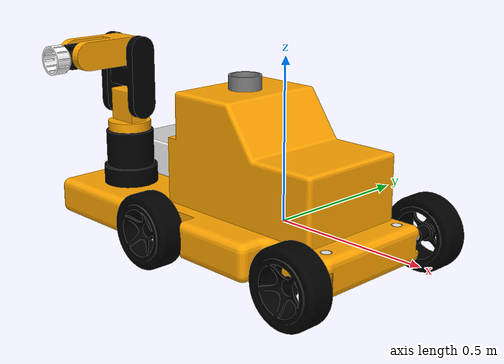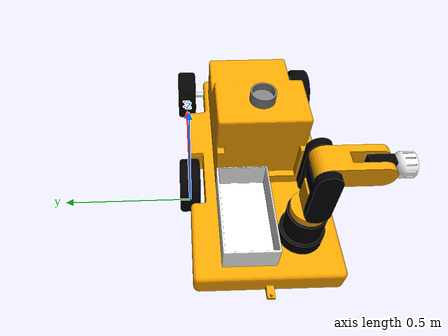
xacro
<?xml version="1.0"?>
<robot
  name="fruit_vehicle_arm" xmlns:xacro="http://ros.org/wiki/xacro">
  # Add this before base link
  <link name="dummy_link"></link>
  <link
    name="base_chassis_link">
    <inertial>
      <origin
        xyz="0.087017 -0.254 0.15167"
        rpy="0 0 0" />
      <mass
        value="158.88" />
      <inertia
        ixx="2.7645"
        ixy="1.3635E-16"
        ixz="0.14718"
        iyy="9.7347"
        iyz="-4.0246E-07"
        izz="11.716" />
    </inertial>
    <visual>
      <origin
        xyz="0 0 0"
        rpy="0 0 0" />
      <geometry>
        <mesh
          filename="package://fruit_vehicle_arm/meshes/base_chassis_link.STL" />
      </geometry>
      <material
        name="">
        <color
          rgba="1 0.647 0 1" />
      </material>
    </visual>
    <collision>
      <origin
        xyz="0 0 0"
        rpy="0 0 0" />
      <geometry>
        <mesh
          filename="package://fruit_vehicle_arm/meshes/base_chassis_link.STL" />
      </geometry>
    </collision>
  </link>
  # Add this after base link
  <joint name="dummy_joint" type="fixed">
      <origin rpy="0 0 0" xyz="0 0 0" />
      <parent link="dummy_link"/>
      <child link="base_chassis_link"/>
  </joint>
  <link
    name="rear_left_wheel_link">
    <inertial>
      <origin
        xyz="-4.9826570758249E-08 -6.00333797673436E-08 -9.363213336816E-05"
        rpy="0 0 0" />
      <mass
        value="0.784079252834122" />
      <inertia
        ixx="0.00313877186753156"
        ixy="1.13845295642848E-08"
        ixz="3.73865756301693E-09"
        iyy="0.00313877014381181"
        iyz="3.0127620523046E-09"
        izz="0.00532754482672668" />
    </inertial>
    <visual>
      <origin
        xyz="0 0 0"
        rpy="0 0 0" />
      <geometry>
        <mesh
          filename="package://fruit_vehicle_arm/meshes/rear_left_wheel_link.STL" />
      </geometry>
      <material
        name="">
        <color
          rgba="0 0 0 1" />
      </material>
    </visual>
    <collision>
      <origin
        xyz="0 0 0"
        rpy="0 0 0" />
      <geometry>
        <mesh
          filename="package://fruit_vehicle_arm/meshes/rear_left_wheel_link.STL" />
      </geometry>
    </collision>
  </link>
  <joint
    name="rear_left_wheel_joint"
    type="continuous">
    <origin
      xyz="0 0 0.1016"
      rpy="1.5708 0 0" />
    <parent
      link="base_chassis_link" />
    <child
      link="rear_left_wheel_link" />
    <axis
      xyz="0 0 -1" />
    <limit
      effort="30"
      velocity="6" />
    <dynamics damping="0.1" friction="0.05" /> <!-- Fine-tune these values -->
  </joint>
  <link
    name="rear_right_wheel_link">
    <inertial>
      <origin
        xyz="-7.25355550623696E-08 -2.94789358479264E-08 9.36317316124827E-05"
        rpy="0 0 0" />
      <mass
        value="0.784079220999344" />
      <inertia
        ixx="0.00313877685784208"
        ixy="9.80107157547172E-09"
        ixz="-4.00030025684517E-09"
        iyy="0.0031387651464266"
        iyz="-2.65238154905891E-09"
        izz="0.00532754482329061" />
    </inertial>
    <visual>
      <origin
        xyz="0 0 0"
        rpy="0 0 0" />
      <geometry>
        <mesh
          filename="package://fruit_vehicle_arm/meshes/rear_right_wheel_link.STL" />
      </geometry>
      <material
        name="">
        <color
          rgba="0 0 0 1" />
      </material>
    </visual>
    <collision>
      <origin
        xyz="0 0 0"
        rpy="0 0 0" />
      <geometry>
        <mesh
          filename="package://fruit_vehicle_arm/meshes/rear_right_wheel_link.STL" />
      </geometry>
    </collision>
  </link>
  <joint
    name="rear_right_wheel_joint"
    type="continuous">
    <origin
      xyz="0 -0.508000000000002 0.101600000000001"
      rpy="1.5707963267949 0 0" />
    <parent
      link="base_chassis_link" />
    <child
      link="rear_right_wheel_link" />
    <axis
      xyz="0 0 1" />
    <limit
      effort="30"
      velocity="6" />
    <dynamics damping="0.1" friction="0.05" /> <!-- Fine-tune these values -->
  </joint>
  <link
    name="front_left_wheel_revolute_link">
    <inertial>
      <origin
        xyz="1.22124532708767E-15 0.0441998322829882 -0.042510111403507"
        rpy="0 0 0" />
      <mass
        value="0.200576881049191" />
      <inertia
        ixx="0.000369683498051665"
        ixy="-1.1118705425367E-18"
        ixz="2.32830724824954E-19"
        iyy="5.18373707811601E-05"
        iyz="6.64392826806987E-05"
        izz="0.000332287662706047" />
    </inertial>
    <visual>
      <origin
        xyz="0 0 0"
        rpy="0 0 0" />
      <geometry>
        <mesh
          filename="package://fruit_vehicle_arm/meshes/front_left_wheel_revolute_link.STL" />
      </geometry>
      <material
        name="">
        <color
          rgba="0.898039215686275 0.917647058823529 0.929411764705882 1" />
      </material>
    </visual>
    <collision>
      <origin
        xyz="0 0 0"
        rpy="0 0 0" />
      <geometry>
        <mesh
          filename="package://fruit_vehicle_arm/meshes/front_left_wheel_revolute_link.STL" />
      </geometry>
    </collision>
  </link>
  <joint
    name="front_left_wheel_revolute_joint"
    type="revolute">
    <origin
      xyz="0.508000000000001 -0.120650000000001 0.151600000000001"
      rpy="0 0 0" />
    <parent
      link="base_chassis_link" />
    <child
      link="front_left_wheel_revolute_link" />
    <axis
      xyz="0 0 -1" />
    <limit
      lower="-0.26"
      upper="0.26"
      effort="0"
      velocity="0" />
    <safety_controller
      soft_upper_limit="0.66"
      soft_lower_limit="-0.26"
      k_velocity="0" />
    <dynamics damping="0.1" friction="0.05" /> <!-- Fine-tune these values -->
  </joint>
  <link
    name="front_left_wheel_link">
    <inertial>
      <origin
        xyz="-2.56660644959439E-08 7.39707209373996E-08 -9.36317316134749E-05"
        rpy="0 0 0" />
      <mass
        value="0.784079220999348" />
      <inertia
        ixx="0.00313876052101589"
        ixy="-4.52730308330953E-09"
        ixz="6.43639447255339E-10"
        iyy="0.0031387814832528"
        iyz="-4.75639131493849E-09"
        izz="0.00532754482329061" />
    </inertial>
    <visual>
      <origin
        xyz="0 0 0"
        rpy="0 0 0" />
      <geometry>
        <mesh
          filename="package://fruit_vehicle_arm/meshes/front_left_wheel_link.STL" />
      </geometry>
      <material
        name="">
        <color
          rgba="0 0 0 1" />
      </material>
    </visual>
    <collision>
      <origin
        xyz="0 0 0"
        rpy="0 0 0" />
      <geometry>
        <mesh
          filename="package://fruit_vehicle_arm/meshes/front_left_wheel_link.STL" />
      </geometry>
    </collision>
  </link>
  <joint
    name="front_left_wheel_joint"
    type="continuous">
    <origin
      xyz="0 0.120704104017929 -0.05"
      rpy="1.5707963267949 0 0" />
    <parent
      link="front_left_wheel_revolute_link" />
    <child
      link="front_left_wheel_link" />
    <axis
      xyz="0 0 -1" />
    <limit
      effort="30"
      velocity="6" />
    <dynamics damping="0.1" friction="0.05" /> <!-- Fine-tune these values -->
  </joint>
  <link
    name="front_right_wheel_revolute_link">
    <inertial>
      <origin
        xyz="1.66533453693773E-15 -0.0441998322829901 -0.0425101114035069"
        rpy="0 0 0" />
      <mass
        value="0.200576881049191" />
      <inertia
        ixx="0.000369683498051665"
        ixy="-1.78997664883668E-19"
        ixz="-6.01526521430622E-20"
        iyy="5.183737078116E-05"
        iyz="-6.64392826806986E-05"
        izz="0.000332287662706047" />
    </inertial>
    <visual>
      <origin
        xyz="0 0 0"
        rpy="0 0 0" />
      <geometry>
        <mesh
          filename="package://fruit_vehicle_arm/meshes/front_right_wheel_revolute_link.STL" />
      </geometry>
      <material
        name="">
        <color
          rgba="0.898039215686275 0.917647058823529 0.929411764705882 1" />
      </material>
    </visual>
    <collision>
      <origin
        xyz="0 0 0"
        rpy="0 0 0" />
      <geometry>
        <mesh
          filename="package://fruit_vehicle_arm/meshes/front_right_wheel_revolute_link.STL" />
      </geometry>
    </collision>
  </link>
  <joint
    name="front_right_wheel_revolute_joint"
    type="revolute">
    <origin
      xyz="0.507999999999999 -0.387350000000003 0.151600000000001"
      rpy="0 0 0" />
    <parent
      link="base_chassis_link" />
    <child
      link="front_right_wheel_revolute_link" />
    <axis
      xyz="0 0 -1" />
    <limit
      lower="-0.66"
      upper="0.26"
      effort="0"
      velocity="0" />
    <safety_controller
      soft_upper_limit="0.243"
      soft_lower_limit="-0.603"
      k_position="100"
      k_velocity="0" />
    <dynamics damping="0.1" friction="0.05" /> <!-- Fine-tune these values -->
  </joint>
  <link
    name="front_right_wheel_link">
    <inertial>
      <origin
        xyz="-7.68976589071713E-08 1.47364999092403E-08 9.36317316134472E-05"
        rpy="0 0 0" />
      <mass
        value="0.784079220999348" />
      <inertia
        ixx="0.00313878233921512"
        ixy="-1.34941354711019E-09"
        ixz="-4.79949634266107E-09"
        iyy="0.00313875966505358"
        iyz="-4.86308110983573E-11"
        izz="0.00532754482329062" />
    </inertial>
    <visual>
      <origin
        xyz="0 0 0"
        rpy="0 0 0" />
      <geometry>
        <mesh
          filename="package://fruit_vehicle_arm/meshes/front_right_wheel_link.STL" />
      </geometry>
      <material
        name="">
        <color
          rgba="0 0 0 1" />
      </material>
    </visual>
    <collision>
      <origin
        xyz="0 0 0"
        rpy="0 0 0" />
      <geometry>
        <mesh
          filename="package://fruit_vehicle_arm/meshes/front_right_wheel_link.STL" />
      </geometry>
    </collision>
  </link>
  <joint
    name="front_right_wheel_joint"
    type="continuous">
    <origin
      xyz="0 -0.120704104017928 -0.0499999999999999"
      rpy="1.5707963267949 0 0" />
    <parent
      link="front_right_wheel_revolute_link" />
    <child
      link="front_right_wheel_link" />
    <axis
      xyz="0 0 1" />
    <limit
      effort="30"
      velocity="6" />
    <dynamics damping="0.1" friction="0.05" /> <!-- Fine-tune these values -->
  </joint>
  <link
    name="lidar_mount_link">
    <inertial>
      <origin
        xyz="0 0 0.000253999999999754"
        rpy="0 0 0" />
      <mass
        value="0.114868051974007" />
      <inertia
        ixx="8.37812546680682E-05"
        ixy="-4.08865909427106E-21"
        ixz="1.1000784671411E-21"
        iyy="8.37812546680683E-05"
        iyz="4.07333050851227E-22"
        izz="0.000142380518370692" />
    </inertial>
    <visual>
      <origin
        xyz="0 0 0"
        rpy="0 0 0" />
      <geometry>
        <mesh
          filename="package://fruit_vehicle_arm/meshes/lidar_mount_link.STL" />
      </geometry>
      <material
        name="">
        <color
          rgba="0.498039215686275 0.498039215686275 0.498039215686275 1" />
      </material>
    </visual>
    <collision>
      <origin
        xyz="0 0 0"
        rpy="0 0 0" />
      <geometry>
        <mesh
          filename="package://fruit_vehicle_arm/meshes/lidar_mount_link.STL" />
      </geometry>
    </collision>
  </link>
  <joint
    name="lidar_mount_fixed_joint"
    type="fixed">
    <origin
      xyz="0.0976723407068822 -0.254000000000001 0.469100000000001"
      rpy="0 0 0" />
    <parent
      link="base_chassis_link" />
    <child
      link="lidar_mount_link" />
    <axis
      xyz="0 0 0" />
  </joint>
  <link
    name="basket_link">
    <inertial>
      <origin
        xyz="-1.66533453693773E-16 3.33066907387547E-16 0.0275088248198601"
        rpy="0 0 0" />
      <mass
        value="7.85757316254919" />
      <inertia
        ixx="0.0459267563628034"
        ixy="-1.06459187748712E-17"
        ixz="-3.24460139062564E-16"
        iyy="0.111496373975222"
        iyz="2.01766765517888E-16"
        izz="0.140832289993602" />
    </inertial>
    <visual>
      <origin
        xyz="0 0 0"
        rpy="0 0 0" />
      <geometry>
        <mesh
          filename="package://fruit_vehicle_arm/meshes/basket_link.STL" />
      </geometry>
      <material
        name="">
        <color
          rgba="1 1 1 1" />
      </material>
    </visual>
    <collision>
      <origin
        xyz="0 0 0"
        rpy="0 0 0" />
      <geometry>
        <mesh
          filename="package://fruit_vehicle_arm/meshes/basket_link.STL" />
      </geometry>
    </collision>
  </link>
  <joint
    name="basket_joint"
    type="fixed">
    <origin
      xyz="-0.200659999999999 -0.187452000000002 0.157950000000001"
      rpy="0 0 0" />
    <parent
      link="base_chassis_link" />
    <child
      link="basket_link" />
    <axis
      xyz="0 0 0" />
  </joint>
  <link
    name="arm_base_link">
    <inertial>
      <origin
        xyz="2.498E-16 1.3878E-17 0.070329"
        rpy="0 0 0" />
      <mass
        value="6.2159" />
      <inertia
        ixx="0.02003"
        ixy="-1.2326E-32"
        ixz="-1.4914E-17"
        iyy="0.02003"
        iyz="-8.8681E-20"
        izz="0.015758" />
    </inertial>
    <visual>
      <origin
        xyz="0 0 0.2320"
        rpy="1.5707 0 0" />
      <geometry>
        <mesh
          filename="package://fruit_vehicle_arm/meshes/arm_base_link.STL" />
      </geometry>
      <material
        name="">
        <color
          rgba="0 0 0 1" />
      </material>
    </visual>
    <collision>
      <origin
        xyz="0 0 0.2320"
        rpy="1.5707 0 0" />
      <geometry>
        <mesh
          filename="package://fruit_vehicle_arm/meshes/arm_base_link.STL" />
      </geometry>
    </collision>
  </link>
  <joint
    name="arm_base_joint"
    type="fixed">
    <origin
      xyz="-0.254746654079698 -0.371000000000001 0.151600000000001"
      rpy="0 0 0" />
    <parent
      link="base_chassis_link" />
    <child
      link="arm_base_link" />
    <axis
      xyz="0 0 0" />
  </joint>
  <link
    name="arm_link1">
    <inertial>
      <origin
        xyz="3.1919E-16 -2.7756E-17 0.081638"
        rpy="0 0 0" />
      <mass
        value="2.1185" />
      <inertia
        ixx="0.0038718"
        ixy="-9.5442E-18"
        ixz="-4.3126E-18"
        iyy="0.0045447"
        iyz="-4.0846E-19"
        izz="0.0026681" />
    </inertial>
    <visual>
      <origin
        xyz="0 0 0.12"
        rpy="1.5707 0 1.5707" />
      <geometry>
        <mesh
          filename="package://fruit_vehicle_arm/meshes/arm_link1.STL" />
      </geometry>
      <material
        name="">
        <color
          rgba="1 0.647 0 1" />
      </material>
    </visual>
    <collision>
      <origin
        xyz="0 0 0.12"
        rpy="1.5707 0 1.5707" />
      <geometry>
        <mesh
          filename="package://fruit_vehicle_arm/meshes/arm_link1.STL" />
      </geometry>
    </collision>
  </link>
  <joint
    name="arm_link1_joint"
    type="revolute">
    <origin
      xyz="0 0 0.1143"
      rpy="0 0 0" />
    <parent
      link="arm_base_link" />
    <child
      link="arm_link1" />
    <axis
      xyz="0 0 1" />
    <limit
      lower="0"
      upper="4.7124"
      effort="50"
      velocity="2" />
    <dynamics damping="0.5" friction="0.3" /> <!-- Fine-tune these values -->
  </joint>
  <link
    name="arm_link2">
    <inertial>
      <origin
        xyz="-2.7756E-17 0.0762 4.1633E-17"
        rpy="0 0 0" />
      <mass
        value="1.8076" />
      <inertia
        ixx="0.010484"
        ixy="9.6463E-19"
        ixz="-4.6648E-17"
        iyy="0.0060188"
        iyz="2.7269E-19"
        izz="0.0059518" />
    </inertial>
    <visual>
      <origin
        xyz="0 0 0"
        rpy="0 0 0" />
      <geometry>
        <mesh
          filename="package://fruit_vehicle_arm/meshes/arm_link2.STL" />
      </geometry>
      <material
        name="">
        <color
          rgba="0 0 0 1" />
      </material>
    </visual>
    <collision>
      <origin
        xyz="0 0 0"
        rpy="0 0 0" />
      <geometry>
        <mesh
          filename="package://fruit_vehicle_arm/meshes/arm_link2.STL" />
      </geometry>
    </collision>
  </link>
  <joint
    name="arm_link2_joint"
    type="revolute">
    <origin
      xyz="0 0 0.11811"
      rpy="1.5708 0 -1.5708" />
    <parent
      link="arm_link1" />
    <child
      link="arm_link2" />
    <axis
      xyz="0 0 -1" />
    <limit
      lower="-1.4"
      upper="1.74"
      effort="70"
      velocity="1.5" />
    <dynamics damping="0.8" friction="0.4" /> <!-- Fine-tune these values -->
  </joint>
  <link
    name="arm_link3">
    <inertial>
      <origin
        xyz="-3.3307E-16 0.059453 -6.1062E-16"
        rpy="0 0 0" />
      <mass
        value="2.9342" />
      <inertia
        ixx="0.013293"
        ixy="6.9848E-17"
        ixz="-8.2327E-18"
        iyy="0.0038252"
        iyz="8.4028E-17"
        izz="0.012096" />
    </inertial>
    <visual>
      <origin
        xyz="0.38 -0.18 -0.054"
        rpy="0 1.5707 -3.14159" />
      <geometry>
        <mesh
          filename="package://fruit_vehicle_arm/meshes/arm_link3.STL" />
      </geometry>
      <material
        name="">
        <color
          rgba="1 0.647 0 1" />
      </material>
    </visual>
    <collision>
      <origin
        xyz="0.38 -0.18 -0.054"
        rpy="0 1.5707 -3.14159" />
      <geometry>
        <mesh
          filename="package://fruit_vehicle_arm/meshes/arm_link3.STL" />
      </geometry>
    </collision>
  </link>
  <joint
    name="arm_link3_joint"
    type="revolute">
    <origin
      xyz="0 0.1524 0"
      rpy="0 0 -1.5708" />
    <parent
      link="arm_link2" />
    <child
      link="arm_link3" />
    <axis
      xyz="0 0 1" />
    <limit
      lower="-0.3"
      upper="2.84"
      effort="50"
      velocity="2.5" />
    <dynamics damping="0.6" friction="0.2" /> <!-- Fine-tune these values -->
  </joint>
  <link
    name="arm_link4">
    <inertial>
      <origin
        xyz="-0.00066954 0 1.3878E-17"
        rpy="0 0 0" />
      <mass
        value="0.46003" />
      <inertia
        ixx="0.00020844"
        ixy="-6.1881E-19"
        ixz="1.4649E-18"
        iyy="0.00026376"
        iyz="-5.6032E-20"
        izz="0.0003527" />
    </inertial>
    <visual>
      <origin
        xyz="-0.332 -0.3825 -0.054"
        rpy="0 1.5707 1.5707" />
      <geometry>
        <mesh
          filename="package://fruit_vehicle_arm/meshes/arm_link4.STL" />
      </geometry>
      <material
        name="">
        <color
          rgba="0 0 0 1" />
      </material>
    </visual>
  </link>
  <joint
    name="arm_link4_joint"
    type="revolute">
    <origin
      xyz="0 0.1524 0"
      rpy="0 0 1.5708" />
    <parent
      link="arm_link3" />
    <child
      link="arm_link4" />
    <axis
      xyz="0 0 1" />
    <limit
      lower="-1.5708"
      upper="1.5708"
      effort="20"
      velocity="3" />
    <dynamics damping="0.3" friction="0.1" /> <!-- Fine-tune these values -->
  </joint>
  <link
    name="gripper_link">
    <inertial>
      <origin
        xyz="0.039428 5.5027E-10 -1.4847E-09"
        rpy="0 0 0" />
      <mass
        value="0.074412" />
      <inertia
        ixx="6.8029E-05"
        ixy="2.0608E-12"
        ixz="-5.5603E-12"
        iyy="5.7489E-05"
        iyz="-4.3049E-19"
        izz="5.7489E-05" />
    </inertial>
    <visual>
      <origin
        xyz="-0.36 0.048 -0.38"
        rpy="0 0 1.5707" />
      <geometry>
        <mesh
          filename="package://fruit_vehicle_arm/meshes/gripper_link.STL" />
      </geometry>
      <material
        name="">
        <color
          rgba="1 1 1 1" />
      </material>
    </visual>
  </link>
  <joint
    name="gripper_joint"
    type="revolute">
    <origin
      xyz="0.0254 0 0"
      rpy="0 0 0" />
    <parent
      link="arm_link4" />
    <child
      link="gripper_link" />
    <axis
      xyz="0 0 1" />
    <limit
      lower="-1.5708"
      upper="1.5708"
      effort="20"
      velocity="3" />
    <dynamics damping="0.3" friction="0.1" /> <!-- Fine-tune these values -->
  </joint>

  <!-- Gazebo-specific link properties  robot arm-->
  <gazebo reference="arm_base_link">
    <material>Gazebo/Black</material>
    <turnGravityOff>true</turnGravityOff>
    <minDepth>0.003</minDepth>
    <!-- Reduce Velocity After Contact-->
    <maxVel>0</maxVel>
  </gazebo>
  <gazebo reference="arm_link1">
    <material>Gazebo/Orange</material>
    <turnGravityOff>true</turnGravityOff>
    <minDepth>0.003</minDepth>
    <maxVel>0</maxVel>
  </gazebo>
  <gazebo reference="arm_link2">
    <material>Gazebo/Black</material>
    <turnGravityOff>true</turnGravityOff>
    <minDepth>0.003</minDepth>
    <maxVel>0</maxVel>
  </gazebo>
  <gazebo reference="arm_link3">
    <material>Gazebo/Orange</material>
    <turnGravityOff>true</turnGravityOff>
    <minDepth>0.003</minDepth>
    <maxVel>0</maxVel>
  </gazebo>
  <gazebo reference="arm_link4">
    <material>Gazebo/Black</material>
    <turnGravityOff>true</turnGravityOff>
    <minDepth>0.003</minDepth>
    <maxVel>0</maxVel>
  </gazebo>
  <gazebo reference="gripper_link">
    <material>Gazebo/White</material>
    <turnGravityOff>true</turnGravityOff>
    <!--Modify Friction-->
    <mu1>10</mu1>
    <mu2>10</mu2>
    <minDepth>0.003</minDepth>
    <maxVel>0</maxVel>
  </gazebo>

  <!-- Gazebo-specific link properties vehicle -->
  <gazebo reference="base_chassis_link">
    <material>Gazebo/Orange</material>
    <minDepth>0.003</minDepth>
    <maxVel>0</maxVel>
  </gazebo>
  <gazebo reference="rear_left_wheel_link">
    <material>Gazebo/Black</material>
    <minDepth>0.003</minDepth>
    <maxVel>0</maxVel>
  </gazebo>
  <gazebo reference="rear_right_wheel_link">
    <material>Gazebo/Black</material>
    <minDepth>0.003</minDepth>
    <maxVel>0</maxVel>
  </gazebo>
  <gazebo reference="front_left_wheel_revolute_link">
    <material>Gazebo/Gray</material>
    <minDepth>0.003</minDepth>
    <maxVel>0</maxVel>
  </gazebo>
  <gazebo reference="front_right_wheel_revolute_link">
    <material>Gazebo/Gray</material>
    <minDepth>0.003</minDepth>
    <maxVel>0</maxVel>
  </gazebo>
  <gazebo reference="front_left_wheel_link">
    <material>Gazebo/Black</material>
    <minDepth>0.003</minDepth>
    <maxVel>0</maxVel>
  </gazebo>
  <gazebo reference="front_right_wheel_link">
    <material>Gazebo/Black</material>
    <minDepth>0.003</minDepth>
    <maxVel>0</maxVel>
  </gazebo>
  <gazebo reference="lidar_mount_link">
    <material>Gazebo/LightGray</material>
    <minDepth>0.003</minDepth>
    <maxVel>0</maxVel>
  </gazebo>
  <gazebo reference="basket_link">
    <material>Gazebo/DarkGray</material>
    <minDepth>0.003</minDepth>
    <maxVel>0</maxVel>
  </gazebo>

 <ros2_control name="GazeboSystem" type="system">
    <hardware>
        <plugin>gazebo_ros2_control/GazeboSystem</plugin>
    </hardware>
  <!-- Velocity Controllers -->

  <joint name="rear_right_wheel_joint">
      <command_interface name="velocity">
          <param name="min">-1000.0</param>
          <param name="max">1000.0</param>
      </command_interface>
      <state_interface name="position"/>
      <state_interface name="velocity"/>
  </joint>

  <joint name="rear_left_wheel_joint">
      <command_interface name="velocity">
          <param name="min">-1000.0</param>
          <param name="max">1000.0</param>
      </command_interface>
      <state_interface name="position"/>
      <state_interface name="velocity"/>
  </joint>

  <!-- Position Controller -->
  <joint name="front_left_wheel_revolute_joint">
      <command_interface name="position">
          <param name="min">-3.14</param>
          <param name="max">3.14</param>
      </command_interface>
      <state_interface name="position"/>
      <state_interface name="velocity"/>
  </joint>

  <joint name="front_right_wheel_revolute_joint">
      <command_interface name="position">
          <param name="min">-3.14</param>
          <param name="max">3.14</param>
      </command_interface>
      <state_interface name="position"/>
      <state_interface name="velocity"/>
  </joint>

  <joint name="arm_link1_joint">
      <command_interface name="position">
          <param name="min">-3.14</param>
          <param name="max">3.14</param>
      </command_interface>
      <state_interface name="position"/>
      <state_interface name="velocity"/>
  </joint>

  <joint name="arm_link2_joint">
      <command_interface name="position">
          <param name="min">-1.57</param>
          <param name="max">1.57</param>
      </command_interface>
      <state_interface name="position"/>
      <state_interface name="velocity"/>
  </joint>

  <joint name="arm_link3_joint">
      <command_interface name="position">
          <param name="min">-1.0</param>
          <param name="max">4.5</param>
      </command_interface>
      <state_interface name="position"/>
      <state_interface name="velocity"/>
  </joint>

  <joint name="arm_link4_joint">
      <command_interface name="position">
          <param name="min">-2.5</param>
          <param name="max">2.5</param>
      </command_interface>
      <state_interface name="position"/>
      <state_interface name="velocity"/>
  </joint>
  </ros2_control>

  <gazebo>
    <plugin filename="libgazebo_ros2_control.so" name="gazebo_ros2_control">
        <parameters>$(find fruit_vehicle_arm)/config/control.yaml</parameters>
    </plugin>
  </gazebo>

  <gazebo reference="lidar_mount_link">
    <sensor name="lidar" type="ray">
      <pose>0.0 0.0 0.0 0 0 0</pose>
      <always_on>true</always_on>
      <visualize>true</visualize>
      <update_rate>5</update_rate>
      <ray>
        <scan>
          <horizontal>
            <samples>360</samples>
            <resolution>1.00000</resolution>
            <min_angle>0.000000</min_angle>
            <max_angle>6.280000</max_angle>
          </horizontal>
        </scan>
        <range>
          <min>0.120000</min>
          <max>3.5</max>
          <resolution>0.015000</resolution>
        </range>
        <noise>
          <type>gaussian</type>
          <mean>0.0</mean>
          <stddev>0.01</stddev>
        </noise>
      </ray>
      <plugin name="scan" filename="libgazebo_ros_ray_sensor.so">
        <ros>
          <remapping>~/out:=scan</remapping>
        </ros>
        <output_type>sensor_msgs/LaserScan</output_type>
        <frame_name>lidar_mount_link</frame_name>
      </plugin>
    </sensor>
  </gazebo>

  <gazebo reference="base_chassis_link">
    <gravity>true</gravity>
    <sensor name="imu_sensor" type="imu">
      <always_on>true</always_on>
      <update_rate>100</update_rate>
      <visualize>true</visualize>
      <topic>__default_topic__</topic>
      <plugin filename="libgazebo_ros_imu_sensor.so" name="imu_plugin">
        <topicName>imu</topicName>
        <bodyName>base_chassis_link</bodyName>
        <updateRateHZ>10.0</updateRateHZ>
        <gaussianNoise>0.0</gaussianNoise>
        <xyzOffset>0 0 0</xyzOffset>
        <rpyOffset>0 0 0</rpyOffset>
        <frameName>base_chassis_link</frameName>
        <initialOrientationAsReference>false</initialOrientationAsReference>
      </plugin>
      <pose>0 0 0 0 0 0</pose>
    </sensor>
  </gazebo>

  <gazebo>
    <plugin filename="libodometry_plugin.so" name="odometry_plugin">
        <!-- Name of the link for which the odometry is required -->
        <frame>dummy_link</frame>
        <!-- Any arbitray name for the world frame -->
        <world_frame>map</world_frame>
    </plugin>
  </gazebo>

  <!-- Adding gripper plugin-->
  <gazebo>
    <plugin name='vacuum_gripper' filename='libgazebo_ros_vacuum_gripper.so'>

      <!-- This part can be commented out if not required -->
      <ros>

        <!-- Add a namespace -->

        <namespace>/demo</namespace>

        <!-- Remapping service and topic names -->
        <remapping>switch:=custom_switch</remapping>
        <remapping>grasping:=custom_grasping</remapping>
      </ros>

      <!-- Link associated with gripper -->
      <link_name>gripper_link</link_name>

      <!-- Max distance to attract entities -->
      <max_distance>0.2</max_distance>

      <!-- List of entities to be not attracted by the gripper -->
      <fixed>ground_plane</fixed>
      <fixed>wall</fixed>
      <fixed>sun</fixed>
      <fixed>tree_body_1</fixed>
      <fixed>tree_body_0</fixed>

    </plugin>
  </gazebo>

</robot>
